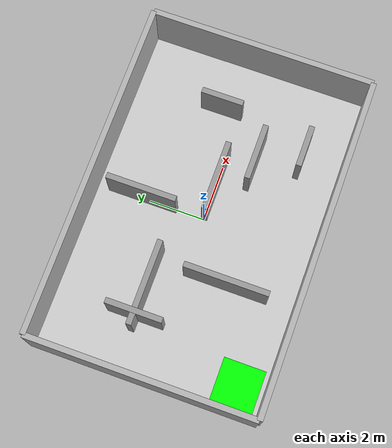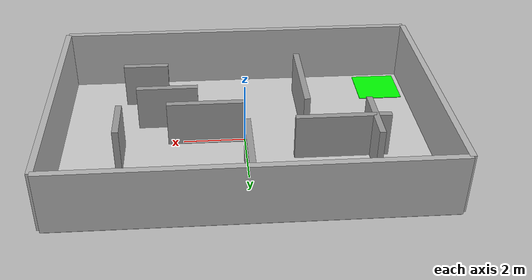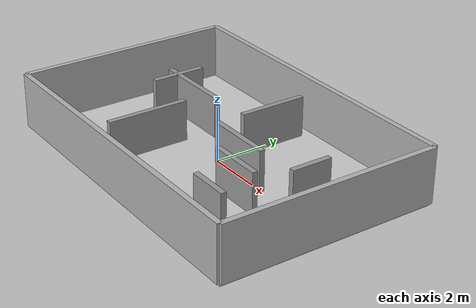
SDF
<?xml version="1.0"?>
<sdf version="1.6">
  <world name="maze_world">
    <!-- Core system plugins -->
    <plugin
      filename="gz-sim-physics-system"
      name="gz::sim::systems::Physics">
    </plugin>
    <plugin
      filename="gz-sim-user-commands-system"
      name="gz::sim::systems::UserCommands">
    </plugin>
    <plugin
      filename="gz-sim-scene-broadcaster-system"
      name="gz::sim::systems::SceneBroadcaster">
    </plugin>
    <plugin
      filename="gz-sim-sensors-system"
      name="gz::sim::systems::Sensors">
      <render_engine>ogre2</render_engine>
    </plugin>
    <plugin
      filename="gz-sim-imu-system"
      name="gz::sim::systems::Imu">
    </plugin>

    <!-- Maze floor -->
    <model name="maze_floor">
      <static>true</static>
      <link name="link">
        <visual name="visual">
          <geometry>
            <box>
              <size>12 8 0.1</size>
            </box>
          </geometry>
          <material>
            <ambient>0.8 0.8 0.8 1</ambient>
            <diffuse>0.8 0.8 0.8 1</diffuse>
          </material>
        </visual>
        <collision name="collision">
          <geometry>
            <box>
              <size>12 8 0.1</size>
            </box>
          </geometry>
        </collision>
      </link>
      <pose>0 0 -0.05 0 0 0</pose>
    </model>

    <!-- Start Zone Marker -->
    <model name="start_zone">
      <static>true</static>
      <link name="link">
        <visual name="visual">
          <geometry>
            <box>
              <size>1.5 1.5 0.02</size>
            </box>
          </geometry>
          <material>
            <ambient>0 1 0 1</ambient>
            <diffuse>0 1 0 1</diffuse>
          </material>
        </visual>
      </link>
      <pose>-5 -3 0.01 0 0 0</pose>
    </model>

    <!-- Maze Outer Walls -->
    <model name="outer_wall_north">
      <static>true</static>
      <link name="link">
        <visual name="visual">
          <geometry>
            <box>
              <size>12 0.2 2</size>
            </box>
          </geometry>
          <material>
            <ambient>0.7 0.7 0.7 1</ambient>
            <diffuse>0.7 0.7 0.7 1</diffuse>
          </material>
        </visual>
        <collision name="collision">
          <geometry>
            <box>
              <size>12 0.2 2</size>
            </box>
          </geometry>
        </collision>
      </link>
      <pose>0 4 1 0 0 0</pose>
    </model>

    <model name="outer_wall_south">
      <static>true</static>
      <link name="link">
        <visual name="visual">
          <geometry>
            <box>
              <size>12 0.2 2</size>
            </box>
          </geometry>
          <material>
            <ambient>0.7 0.7 0.7 1</ambient>
            <diffuse>0.7 0.7 0.7 1</diffuse>
          </material>
        </visual>
        <collision name="collision">
          <geometry>
            <box>
              <size>12 0.2 2</size>
            </box>
          </geometry>
        </collision>
      </link>
      <pose>0 -4 1 0 0 0</pose>
    </model>

    <model name="outer_wall_east">
      <static>true</static>
      <link name="link">
        <visual name="visual">
          <geometry>
            <box>
              <size>0.2 8 2</size>
            </box>
          </geometry>
          <material>
            <ambient>0.7 0.7 0.7 1</ambient>
            <diffuse>0.7 0.7 0.7 1</diffuse>
          </material>
        </visual>
        <collision name="collision">
          <geometry>
            <box>
              <size>0.2 8 2</size>
            </box>
          </geometry>
        </collision>
      </link>
      <pose>6 0 1 0 0 0</pose>
    </model>

    <model name="outer_wall_west">
      <static>true</static>
      <link name="link">
        <visual name="visual">
          <geometry>
            <box>
              <size>0.2 8 2</size>
            </box>
          </geometry>
          <material>
            <ambient>0.7 0.7 0.7 1</ambient>
            <diffuse>0.7 0.7 0.7 1</diffuse>
          </material>
        </visual>
        <collision name="collision">
          <geometry>
            <box>
              <size>0.2 8 2</size>
            </box>
          </geometry>
        </collision>
      </link>
      <pose>-6 0 1 0 0 0</pose>
    </model>

    <!-- Internal Maze Walls -->
    <model name="maze_wall_1">
      <static>true</static>
      <link name="link">
        <visual name="visual">
          <geometry>
            <box>
              <size>3 0.2 1.5</size>
            </box>
          </geometry>
          <material>
            <ambient>0.6 0.6 0.6 1</ambient>
            <diffuse>0.6 0.6 0.6 1</diffuse>
          </material>
        </visual>
        <collision name="collision">
          <geometry>
            <box>
              <size>3 0.2 1.5</size>
            </box>
          </geometry>
        </collision>
      </link>
      <pose>-3 1 0.75 0 0 0</pose>
    </model>

    <model name="maze_wall_2">
      <static>true</static>
      <link name="link">
        <visual name="visual">
          <geometry>
            <box>
              <size>0.2 2.5 1.5</size>
            </box>
          </geometry>
          <material>
            <ambient>0.6 0.6 0.6 1</ambient>
            <diffuse>0.6 0.6 0.6 1</diffuse>
          </material>
        </visual>
        <collision name="collision">
          <geometry>
            <box>
              <size>0.2 2.5 1.5</size>
            </box>
          </geometry>
        </collision>
      </link>
      <pose>0 2.25 0.75 0 0 0</pose>
    </model>

    <model name="maze_wall_3">
      <static>true</static>
      <link name="link">
        <visual name="visual">
          <geometry>
            <box>
              <size>2 0.2 1.5</size>
            </box>
          </geometry>
          <material>
            <ambient>0.6 0.6 0.6 1</ambient>
            <diffuse>0.6 0.6 0.6 1</diffuse>
          </material>
        </visual>
        <collision name="collision">
          <geometry>
            <box>
              <size>2 0.2 1.5</size>
            </box>
          </geometry>
        </collision>
      </link>
      <pose>2.5 -1 0.75 0 0 0</pose>
    </model>

    <model name="maze_wall_4">
      <static>true</static>
      <link name="link">
        <visual name="visual">
          <geometry>
            <box>
              <size>0.2 3 1.5</size>
            </box>
          </geometry>
          <material>
            <ambient>0.6 0.6 0.6 1</ambient>
            <diffuse>0.6 0.6 0.6 1</diffuse>
          </material>
        </visual>
        <collision name="collision">
          <geometry>
            <box>
              <size>0.2 3 1.5</size>
            </box>
          </geometry>
        </collision>
      </link>
      <pose>-2 -1.5 0.75 0 0 0</pose>
    </model>

    <model name="maze_wall_5">
      <static>true</static>
      <link name="link">
        <visual name="visual">
          <geometry>
            <box>
              <size>2.5 0.2 1.5</size>
            </box>
          </geometry>
          <material>
            <ambient>0.6 0.6 0.6 1</ambient>
            <diffuse>0.6 0.6 0.6 1</diffuse>
          </material>
        </visual>
        <collision name="collision">
          <geometry>
            <box>
              <size>2.5 0.2 1.5</size>
            </box>
          </geometry>
        </collision>
      </link>
      <pose>1.25 0 0.75 0 0 0</pose>
    </model>

    <model name="maze_wall_6">
      <static>true</static>
      <link name="link">
        <visual name="visual">
          <geometry>
            <box>
              <size>0.2 1.5 1.5</size>
            </box>
          </geometry>
          <material>
            <ambient>0.6 0.6 0.6 1</ambient>
            <diffuse>0.6 0.6 0.6 1</diffuse>
          </material>
        </visual>
        <collision name="collision">
          <geometry>
            <box>
              <size>0.2 1.5 1.5</size>
            </box>
          </geometry>
        </collision>
      </link>
      <pose>4 0.75 0.75 0 0 0</pose>
    </model>

    <model name="maze_wall_7">
      <static>true</static>
      <link name="link">
        <visual name="visual">
          <geometry>
            <box>
              <size>1.5 0.2 1.5</size>
            </box>
          </geometry>
          <material>
            <ambient>0.6 0.6 0.6 1</ambient>
            <diffuse>0.6 0.6 0.6 1</diffuse>
          </material>
        </visual>
        <collision name="collision">
          <geometry>
            <box>
              <size>1.5 0.2 1.5</size>
            </box>
          </geometry>
        </collision>
      </link>
      <pose>3.25 -2.5 0.75 0 0 0</pose>
    </model>

    <model name="maze_wall_8">
      <static>true</static>
      <link name="link">
        <visual name="visual">
          <geometry>
            <box>
              <size>0.2 2 1.5</size>
            </box>
          </geometry>
          <material>
            <ambient>0.6 0.6 0.6 1</ambient>
            <diffuse>0.6 0.6 0.6 1</diffuse>
          </material>
        </visual>
        <collision name="collision">
          <geometry>
            <box>
              <size>0.2 2 1.5</size>
            </box>
          </geometry>
        </collision>
      </link>
      <pose>-4 1 0.75 0 0 0</pose>
    </model>

    <!-- Maze Lighting -->
    <light type="directional" name="maze_light_1">
      <cast_shadows>true</cast_shadows>
      <pose>0 0 10 0 0 0</pose>
      <diffuse>0.8 0.8 0.8 1</diffuse>
      <specular>0.2 0.2 0.2 1</specular>
      <direction>-0.5 0.1 -0.9</direction>
    </light>

    <light type="point" name="maze_light_2">
      <pose>-3 0 3 0 0 0</pose>
      <diffuse>1 1 1 1</diffuse>
      <specular>0.1 0.1 0.1 1</specular>
      <attenuation>
        <range>20</range>
        <constant>0.5</constant>
        <linear>0.01</linear>
        <quadratic>0.001</quadratic>
      </attenuation>
      <cast_shadows>false</cast_shadows>
    </light>

    <light type="point" name="maze_light_3">
      <pose>3 0 3 0 0 0</pose>
      <diffuse>1 1 1 1</diffuse>
      <specular>0.1 0.1 0.1 1</specular>
      <attenuation>
        <range>20</range>
        <constant>0.5</constant>
        <linear>0.01</linear>
        <quadratic>0.001</quadratic>
      </attenuation>
      <cast_shadows>false</cast_shadows>
    </light>

    <!-- Scene Configuration -->
    <scene>
      <shadows>true</shadows>
      <ambient>0.4 0.4 0.4 1</ambient>
      <background>0.7 0.7 0.7 1</background>
    </scene>

    <!-- Scene Configuration -->
    <scene>
      <shadows>true</shadows>
      <ambient>0.4 0.4 0.4 1</ambient>
      <background>0.7 0.7 0.7 1</background>
    </scene>

    <!-- Camera Configuration -->
    <gui fullscreen='0'>
      <camera name='user_camera'>
        <pose frame=''>-8 -6 12 0 0.8 0.5</pose>
        <view_controller>orbit</view_controller>
        <projection_type>perspective</projection_type>
      </camera>
    </gui>

    <!-- Physics Configuration -->
    <physics type="ode">
      <max_step_size>0.003</max_step_size>
      <real_time_factor>1.0</real_time_factor>
      <real_time_update_rate>333</real_time_update_rate>
      <ode>
        <solver>
          <type>quick</type>
          <iters>50</iters>
          <sor>1.3</sor>
        </solver>
        <constraints>
          <cfm>0.0</cfm>
          <erp>0.2</erp>
          <contact_max_correcting_vel>100.0</contact_max_correcting_vel>
          <contact_surface_layer>0.001</contact_surface_layer>
        </constraints>
      </ode>
    </physics>

  </world>
</sdf>
